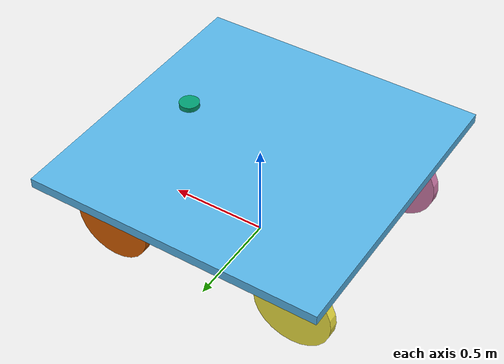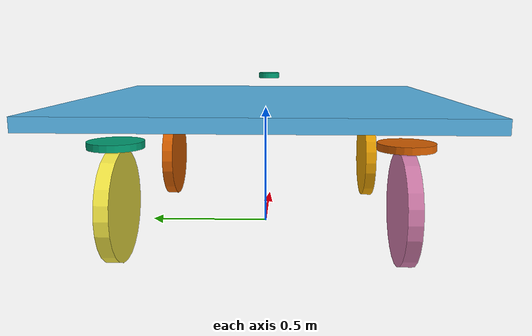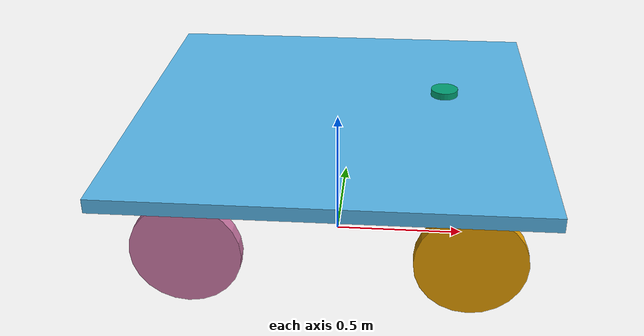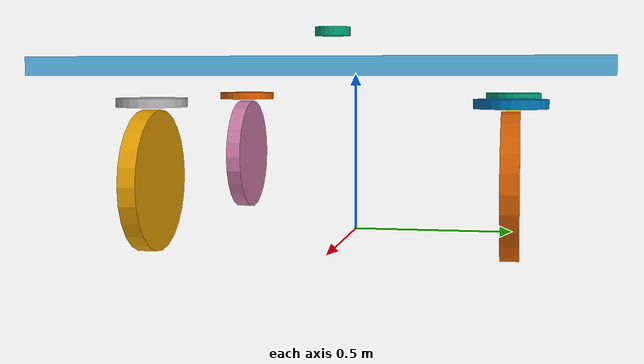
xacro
<?xml version="1.0"?>
<robot name="swerve_bot" xmlns:xacro="http://ros.org/wiki/xacro">
  <xacro:property name="base_mass" value="10.0" />
  <xacro:property name="base_to_steering" value="0.1" />
  <xacro:property name="steering_to_wheel" value="0.02" />
  <xacro:property name="wheel_mass" value="5.0" />
  <xacro:property name="wheel_radius" value="0.2" />
  <xacro:property name="front" value="0.5" />
  <xacro:property name="rear" value="0.5" />
  <xacro:property name="left" value="0.5" />
  <xacro:property name="right" value="0.5" />

  <!-- Define Macro -->
  <xacro:macro name="swerve_motor" params="name parent x_offset y_offset">
    <!-- swerve link -->
    <link name="${name}_swerve_link">
      <inertial>
        <mass value="0.01" />
        <inertia ixx="0.01" iyy="0.01" izz="0.01" ixy="0" ixz="0" iyz="0" />
      </inertial>
      <visual>
        <geometry>
          <cylinder radius="0.025" length="0.025" />
        </geometry>
      </visual>
      <collision>
        <geometry>
          <cylinder radius="0.025" length="0.025" />
        </geometry>
      </collision>
    </link>

    <joint name="${name}_swerve_joint" type="fixed">
      <origin xyz="${x_offset} ${y_offset} 0.0" rpy="0 0 0" />
      <parent link="${parent}" />
      <child link="${name}_swerve_link" />
    </joint>

    <!-- steering link -->
    <link name="${name}_steering_link">
      <inertial>
        <mass value="0.01" />
        <inertia ixx="0.01" iyy="0.01" izz="0.01" ixy="0" ixz="0" iyz="0" />
      </inertial>
      <visual>
        <geometry>
          <cylinder radius="0.1" length="0.025" />
        </geometry>
      </visual>
      <collision>
        <geometry>
          <cylinder radius="0.1" length="0.025" />
        </geometry>
      </collision>
    </link>

    <joint name="${name}_steering_joint" type="continuous">
      <origin xyz="0.0 0.0 ${-base_to_steering}" rpy="0 0 0" />
      <parent link="${name}_swerve_link" />
      <child link="${name}_steering_link" />
      <axis xyz="0 0 1" />
    </joint>

    <ros2_control name="${name}_steering_system" type="system">
      <hardware>
        <plugin>gazebo_ros2_control/GazeboSystem</plugin>
      </hardware>
      <joint name="${name}_steering_joint">
        <command_interface name="position">
          <param name="min">-3.14159</param>
          <param name="max">3.14159</param>
        </command_interface>
        <state_interface name="position" />
        <state_interface name="velocity" />
      </joint>
    </ros2_control>

    <!-- wheel link -->
    <link name="${name}_wheel_link">
      <inertial>
        <mass value="${wheel_mass}" />
        <inertia ixx="0.0029167" iyy="0.0029167" izz="0.0056250" ixy="0" ixz="0" iyz="0" />
      </inertial>
      <visual>
        <geometry>
          <cylinder radius="${wheel_radius}" length="0.05" />
        </geometry>
      </visual>
      <collision>
        <geometry>
          <cylinder radius="${wheel_radius}" length="0.05" />
        </geometry>
        <surface>
          <friction>
            <ode>
              <mu>100000.0</mu>
              <mu2>100000.0</mu2>
              <minDepth>0.001</minDepth>
              <kp>100000000</kp>
              <kd>1</kd>
              <fdir1>0 0 0</fdir1>
              <slip1>0.0</slip1>
              <slip2>0.0</slip2>
            </ode>
          </friction>
          <contact>
            <ode>
              <soft_cfm>0</soft_cfm>
              <soft_erp>0.2</soft_erp>
              <kp>1e+5</kp>
              <kd>1</kd>
              <max_vel>0.01</max_vel>
              <min_depth>0.001</min_depth>
            </ode>
          </contact>
        </surface>
      </collision>
    </link>

    <joint name="${name}_wheel_joint" type="continuous">
      <origin xyz="0 0 ${-wheel_radius-steering_to_wheel}" rpy="-1.57 0 0" />
      <parent link="${name}_steering_link" />
      <child link="${name}_wheel_link" />
      <axis xyz="0 0 1" />
    </joint>

    <ros2_control name="${name}_wheel_system" type="system">
      <hardware>
        <plugin>gazebo_ros2_control/GazeboSystem</plugin>
      </hardware>
      <joint name="${name}_wheel_joint">
        <command_interface name="velocity">
          <param name="min">-100</param>
          <param name="max">100</param>
        </command_interface>
        <state_interface name="position" />
        <state_interface name="velocity" />
      </joint>
    </ros2_control>
  </xacro:macro>

  <!-- Define Links and Joints -->
  <link name="base_footprint" />

  <!-- base link -->
  <link name="base_link">
    <inertial>
      <mass value="${base_mass}" />
      <inertia ixx="0.0118750" iyy="0.0118750" izz="0.0200000" ixy="0" ixz="0" iyz="0" />
    </inertial>
    <visual>
      <geometry>
        <box size="${front+rear+2*wheel_radius+0.1} ${left+right+2*wheel_radius+0.1} 0.05" />
      </geometry>
    </visual>
    <collision>
      <geometry>
        <box size="${front+rear+2*wheel_radius+0.1} ${left+right+2*wheel_radius+0.1} 0.05" />
      </geometry>
    </collision>
  </link>

  <gazebo reference="base_link">
    <visual>
      <transparency>0.5</transparency>
    </visual>
  </gazebo>

  <joint name="base_joint" type="fixed">
    <origin xyz="0 0 ${base_to_steering+steering_to_wheel+2*wheel_radius}" rpy="0 0 0" />
    <parent link="base_footprint" />
    <child link="base_link" />
  </joint>

  <!-- lidar link -->
  <link name="lidar_link">
    <inertial>
      <mass value="0.0" />
      <inertia ixx="0" iyy="0" izz="0" ixy="0" ixz="0" iyz="0" />
    </inertial>
    <visual>
      <geometry>
        <cylinder radius="0.05" length="0.025" />
      </geometry>
    </visual>
    <collision>
      <geometry>
        <cylinder radius="0.05" length="0.025" />
      </geometry>
    </collision>
  </link>

  <joint name="lidar_joint" type="fixed">
    <origin xyz="0.4 0 0.1" rpy="0 0 0" />
    <parent link="base_link" />
    <child link="lidar_link" />
  </joint>

  <!-- swerve links -->
  <xacro:swerve_motor name="front_left" parent="base_link" x_offset="${front}" y_offset="${left}" />
  <xacro:swerve_motor name="front_right" parent="base_link" x_offset="${front}"
    y_offset="${-right}" />
  <xacro:swerve_motor name="rear_left" parent="base_link" x_offset="${-rear}" y_offset="${left}" />
  <xacro:swerve_motor name="rear_right" parent="base_link" x_offset="${-rear}"
    y_offset="${-right}" />

  <!-- Import Plugins -->
  <gazebo>
    <plugin filename="libgazebo_ros2_control.so" name="gazebo_ros2_control">
      <robot_param>robot_description</robot_param>
      <robot_param_node>robot_state_publisher</robot_param_node>
      <parameters>$(find swervebot_sim)/model/swerve4bot/config/swervebot_controller.yaml</parameters>
    </plugin>
  </gazebo>

  <gazebo reference="lidar_link">
    <sensor name="lidar" type="ray">
      <always_on>true</always_on>
      <visualize>false</visualize>
      <pose>0 0 0 0 0 0</pose>
      <update_rate>15</update_rate>
      <ray>
        <scan>
          <horizontal>
            <samples>720</samples>
            <resolution>1</resolution>
            <min_angle>-3.14159265359</min_angle>
            <max_angle>3.14159265359</max_angle>
          </horizontal>
        </scan>
        <range>
          <min>0.05</min>
          <max>15.0</max>
          <resolution>0.01</resolution>
        </range>
        <noise>
          <type>gaussian</type>
          <mean>0.0</mean>
          <stddev>0.001</stddev>
        </noise>
      </ray>
      <plugin name="ray_sensor" filename="libgazebo_ros_ray_sensor.so">
        <ros>
          <remapping>~/out:=scan</remapping>
        </ros>
        <output_type>sensor_msgs/LaserScan</output_type>
      </plugin>
    </sensor>
  </gazebo>
</robot>
